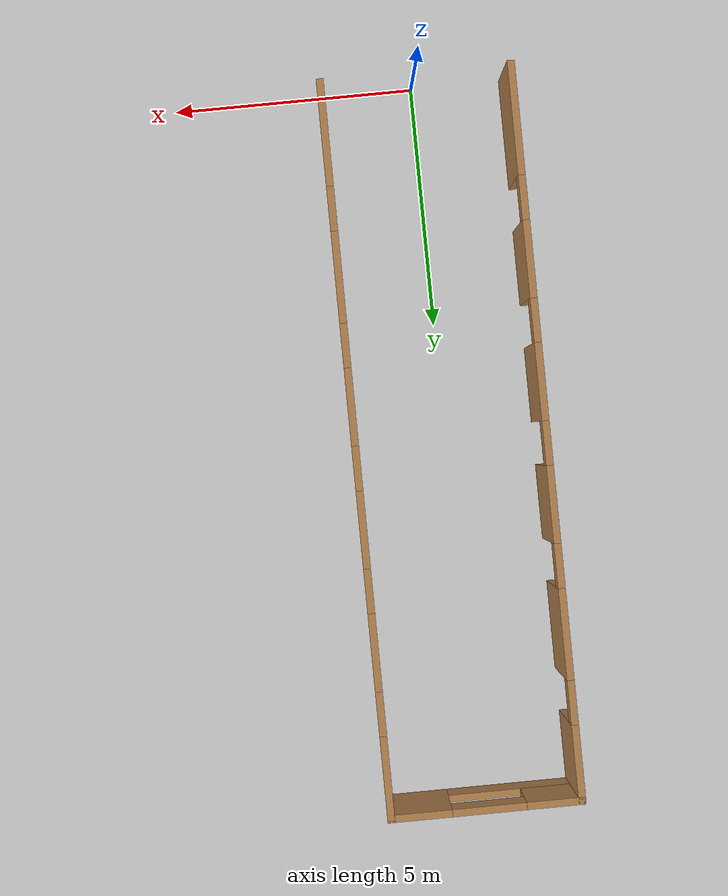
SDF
<sdf version="1.7">
 <world name="default">
  <light name="sun" type="directional">
   <pose>0 0 10 0 -0 0</pose>
   <diffuse>0.8 0.8 0.8 1</diffuse>
   <specular>0.2 0.2 0.2 1</specular>
   <attenuation>
    <range>1000</range>
    <constant>0.9</constant>
    <linear>0.01</linear>
    <quadratic>0.001</quadratic>
   </attenuation>
   <direction>-0.5 0.1 -0.9</direction>
   <spot><inner_angle>0</inner_angle><outer_angle>0</outer_angle><falloff>0</falloff></spot>
  </light>
  <model name="ground_plane">
   <static>1</static>
   <link name="link">
    <collision name="collision">
     <geometry><plane><normal>0 0 1</normal><size>100 100</size></plane></geometry>
     <surface>
      <contact><collide_bitmask>65535</collide_bitmask></contact>
      <friction><ode><mu>100</mu><mu2>50</mu2></ode></friction>
     </surface>
    </collision>
    <visual name="visual">
     <cast_shadows>0</cast_shadows>
     <geometry><plane><normal>0 0 1</normal><size>100 100</size></plane></geometry>
     <material>
      <script><uri>file://media/materials/scripts/gazebo.material</uri><name>Gazebo/Grey</name></script>
     </material>
    </visual>
   </link>
  </model>
  <gravity>0 0 -9.8</gravity>
  <magnetic_field>6e-06 2.3e-05 -4.2e-05</magnetic_field>
  <atmosphere type="adiabatic"/>
  <physics type="ode">
   <max_step_size>0.001</max_step_size>
   <real_time_factor>1</real_time_factor>
   <real_time_update_rate>1000</real_time_update_rate>
  </physics>
  <scene><ambient>0.4 0.4 0.4 1</ambient><background>0.7 0.7 0.7 1</background><shadows>1</shadows></scene>
  <spherical_coordinates>
   <surface_model>EARTH_WGS84</surface_model>
   <latitude_deg>0</latitude_deg>
   <longitude_deg>0</longitude_deg>
   <elevation>0</elevation>
   <heading_deg>0</heading_deg>
  </spherical_coordinates>
  <model name="Untitled">
   <pose>-0.015 7.495 0 0 -0 0</pose>
   <link name="Wall_2">
    <pose>1.925 0 0 0 -0 1.5708</pose>
    <visual name="Wall_2_Visual_0">
     <pose>-6.41515 0 1.25 0 -0 0</pose>
     <geometry><box><size>2.16969 0.15 2.5</size></box></geometry>
     <material>
      <script><uri>file://media/materials/scripts/gazebo.material</uri><name>Gazebo/Wood</name></script>
      <ambient>1 1 1 1</ambient>
     </material>
     <meta><layer>0</layer></meta>
    </visual>
    <collision name="Wall_2_Collision_0">
     <geometry><box><size>2.16969 0.15 2.5</size></box></geometry>
     <pose>-6.41515 0 1.25 0 -0 0</pose>
    </collision>
    <visual name="Wall_2_Visual_1">
     <pose>-3.50054 0 1.25 0 -0 0</pose>
     <geometry><box><size>1.85953 0.15 2.5</size></box></geometry>
     <material>
      <script><uri>file://media/materials/scripts/gazebo.material</uri><name>Gazebo/Wood</name></script>
      <ambient>1 1 1 1</ambient>
     </material>
     <meta><layer>0</layer></meta>
    </visual>
    <collision name="Wall_2_Collision_1">
     <geometry><box><size>1.85953 0.15 2.5</size></box></geometry>
     <pose>-3.50054 0 1.25 0 -0 0</pose>
    </collision>
    <visual name="Wall_2_Visual_2">
     <pose>-0.882532 0 1.25 0 -0 0</pose>
     <geometry><box><size>1.5765 0.15 2.5</size></box></geometry>
     <material>
      <script><uri>file://media/materials/scripts/gazebo.material</uri><name>Gazebo/Wood</name></script>
      <ambient>1 1 1 1</ambient>
     </material>
     <meta><layer>0</layer></meta>
    </visual>
    <collision name="Wall_2_Collision_2">
     <geometry><box><size>1.5765 0.15 2.5</size></box></geometry>
     <pose>-0.882532 0 1.25 0 -0 0</pose>
    </collision>
    <visual name="Wall_2_Visual_3">
     <pose>1.59397 0 1.25 0 -0 0</pose>
     <geometry><box><size>1.5765 0.15 2.5</size></box></geometry>
     <material>
      <script><uri>file://media/materials/scripts/gazebo.material</uri><name>Gazebo/Wood</name></script>
      <ambient>1 1 1 1</ambient>
     </material>
     <meta><layer>0</layer></meta>
    </visual>
    <collision name="Wall_2_Collision_3">
     <geometry><box><size>1.5765 0.15 2.5</size></box></geometry>
     <pose>1.59397 0 1.25 0 -0 0</pose>
    </collision>
    <visual name="Wall_2_Visual_4">
     <pose>4.07046 0 1.25 0 -0 0</pose>
     <geometry><box><size>1.5765 0.15 2.5</size></box></geometry>
     <material>
      <script><uri>file://media/materials/scripts/gazebo.material</uri><name>Gazebo/Wood</name></script>
      <ambient>1 1 1 1</ambient>
     </material>
     <meta><layer>0</layer></meta>
    </visual>
    <collision name="Wall_2_Collision_4">
     <geometry><box><size>1.5765 0.15 2.5</size></box></geometry>
     <pose>4.07046 0 1.25 0 -0 0</pose>
    </collision>
    <visual name="Wall_2_Visual_5">
     <pose>6.62936 0 1.25 0 -0 0</pose>
     <geometry><box><size>1.74129 0.15 2.5</size></box></geometry>
     <material>
      <script><uri>file://media/materials/scripts/gazebo.material</uri><name>Gazebo/Wood</name></script>
      <ambient>1 1 1 1</ambient>
     </material>
     <meta><layer>0</layer></meta>
    </visual>
    <collision name="Wall_2_Collision_5">
     <geometry><box><size>1.74129 0.15 2.5</size></box></geometry>
     <pose>6.62936 0 1.25 0 -0 0</pose>
    </collision>
    <visual name="Wall_2_Visual_6">
     <pose>-4.88031 0 2.25 0 -0 0</pose>
     <geometry><box><size>0.9 0.15 0.5</size></box></geometry>
     <material>
      <script><uri>file://media/materials/scripts/gazebo.material</uri><name>Gazebo/Wood</name></script>
      <ambient>1 1 1 1</ambient>
     </material>
     <meta><layer>0</layer></meta>
    </visual>
    <collision name="Wall_2_Collision_6">
     <geometry><box><size>0.9 0.15 0.5</size></box></geometry>
     <pose>-4.88031 0 2.25 0 -0 0</pose>
    </collision>
    <visual name="Wall_2_Visual_7">
     <pose>-2.12078 0 2.25 0 -0 0</pose>
     <geometry><box><size>0.9 0.15 0.5</size></box></geometry>
     <material>
      <script><uri>file://media/materials/scripts/gazebo.material</uri><name>Gazebo/Wood</name></script>
      <ambient>1 1 1 1</ambient>
     </material>
     <meta><layer>0</layer></meta>
    </visual>
    <collision name="Wall_2_Collision_7">
     <geometry><box><size>0.9 0.15 0.5</size></box></geometry>
     <pose>-2.12078 0 2.25 0 -0 0</pose>
    </collision>
    <visual name="Wall_2_Visual_8">
     <pose>0.355717 0 2.25 0 -0 0</pose>
     <geometry><box><size>0.9 0.15 0.5</size></box></geometry>
     <material>
      <script><uri>file://media/materials/scripts/gazebo.material</uri><name>Gazebo/Wood</name></script>
      <ambient>1 1 1 1</ambient>
     </material>
     <meta><layer>0</layer></meta>
    </visual>
    <collision name="Wall_2_Collision_8">
     <geometry><box><size>0.9 0.15 0.5</size></box></geometry>
     <pose>0.355717 0 2.25 0 -0 0</pose>
    </collision>
    <visual name="Wall_2_Visual_9">
     <pose>2.83221 0 2.25 0 -0 0</pose>
     <geometry><box><size>0.9 0.15 0.5</size></box></geometry>
     <material>
      <script><uri>file://media/materials/scripts/gazebo.material</uri><name>Gazebo/Wood</name></script>
      <ambient>1 1 1 1</ambient>
     </material>
     <meta><layer>0</layer></meta>
    </visual>
    <collision name="Wall_2_Collision_9">
     <geometry><box><size>0.9 0.15 0.5</size></box></geometry>
     <pose>2.83221 0 2.25 0 -0 0</pose>
    </collision>
    <visual name="Wall_2_Visual_10">
     <pose>5.30871 0 2.25 0 -0 0</pose>
     <geometry><box><size>0.9 0.15 0.5</size></box></geometry>
     <material>
      <script><uri>file://media/materials/scripts/gazebo.material</uri><name>Gazebo/Wood</name></script>
      <ambient>1 1 1 1</ambient>
     </material>
     <meta><layer>0</layer></meta>
    </visual>
    <collision name="Wall_2_Collision_10">
     <geometry><box><size>0.9 0.15 0.5</size></box></geometry>
     <pose>5.30871 0 2.25 0 -0 0</pose>
    </collision>
   </link>
   <link name="Wall_4">
    <pose>0 7.425 0 0 -0 3.14159</pose>
    <visual name="Wall_4_Visual_0">
     <pose>-1.34394 0 1.25 0 -0 0</pose>
     <geometry><box><size>1.31213 0.15 2.5</size></box></geometry>
     <material>
      <script><uri>file://media/materials/scripts/gazebo.material</uri><name>Gazebo/Wood</name></script>
      <ambient>1 1 1 1</ambient>
     </material>
     <meta><layer>0</layer></meta>
    </visual>
    <collision name="Wall_4_Collision_0">
     <geometry><box><size>1.31213 0.15 2.5</size></box></geometry>
     <pose>-1.34394 0 1.25 0 -0 0</pose>
    </collision>
    <visual name="Wall_4_Visual_1">
     <pose>0.656065 0 0.4 0 -0 0</pose>
     <geometry><box><size>2.68787 0.15 0.8</size></box></geometry>
     <material>
      <script><uri>file://media/materials/scripts/gazebo.material</uri><name>Gazebo/Wood</name></script>
      <ambient>1 1 1 1</ambient>
     </material>
     <meta><layer>0</layer></meta>
    </visual>
    <collision name="Wall_4_Collision_1">
     <geometry><box><size>2.68787 0.15 0.8</size></box></geometry>
     <pose>0.656065 0 0.4 0 -0 0</pose>
    </collision>
    <visual name="Wall_4_Visual_2">
     <pose>1.40606 0 1.65 0 -0 0</pose>
     <geometry><box><size>1.18787 0.15 1.7</size></box></geometry>
     <material>
      <script><uri>file://media/materials/scripts/gazebo.material</uri><name>Gazebo/Wood</name></script>
      <ambient>1 1 1 1</ambient>
     </material>
     <meta><layer>0</layer></meta>
    </visual>
    <collision name="Wall_4_Collision_2">
     <geometry><box><size>1.18787 0.15 1.7</size></box></geometry>
     <pose>1.40606 0 1.65 0 -0 0</pose>
    </collision>
    <visual name="Wall_4_Visual_3">
     <pose>0.06213 0 2.15 0 -0 0</pose>
     <geometry><box><size>1.5 0.15 0.7</size></box></geometry>
     <material>
      <script><uri>file://media/materials/scripts/gazebo.material</uri><name>Gazebo/Wood</name></script>
      <ambient>1 1 1 1</ambient>
     </material>
     <meta><layer>0</layer></meta>
    </visual>
    <collision name="Wall_4_Collision_3">
     <geometry><box><size>1.5 0.15 0.7</size></box></geometry>
     <pose>0.06213 0 2.15 0 -0 0</pose>
    </collision>
   </link>
   <link name="Wall_5">
    <pose>-1.925 0 0 0 -0 -1.5708</pose>
    <visual name="Wall_5_Visual_0">
     <pose>-6.70011 0 1.25 0 -0 0</pose>
     <geometry><box><size>1.59977 0.15 2.5</size></box></geometry>
     <material>
      <script><uri>file://media/materials/scripts/gazebo.material</uri><name>Gazebo/Wood</name></script>
      <ambient>1 1 1 1</ambient>
     </material>
     <meta><layer>0</layer></meta>
    </visual>
    <collision name="Wall_5_Collision_0">
     <geometry><box><size>1.59977 0.15 2.5</size></box></geometry>
     <pose>-6.70011 0 1.25 0 -0 0</pose>
    </collision>
    <visual name="Wall_5_Visual_1">
     <pose>-4.07046 0 1.25 0 -0 0</pose>
     <geometry><box><size>1.85953 0.15 2.5</size></box></geometry>
     <material>
      <script><uri>file://media/materials/scripts/gazebo.material</uri><name>Gazebo/Wood</name></script>
      <ambient>1 1 1 1</ambient>
     </material>
     <meta><layer>0</layer></meta>
    </visual>
    <collision name="Wall_5_Collision_1">
     <geometry><box><size>1.85953 0.15 2.5</size></box></geometry>
     <pose>-4.07046 0 1.25 0 -0 0</pose>
    </collision>
    <visual name="Wall_5_Visual_2">
     <pose>-1.45245 0 1.25 0 -0 0</pose>
     <geometry><box><size>1.5765 0.15 2.5</size></box></geometry>
     <material>
      <script><uri>file://media/materials/scripts/gazebo.material</uri><name>Gazebo/Wood</name></script>
      <ambient>1 1 1 1</ambient>
     </material>
     <meta><layer>0</layer></meta>
    </visual>
    <collision name="Wall_5_Collision_2">
     <geometry><box><size>1.5765 0.15 2.5</size></box></geometry>
     <pose>-1.45245 0 1.25 0 -0 0</pose>
    </collision>
    <visual name="Wall_5_Visual_3">
     <pose>1.02405 0 1.25 0 -0 0</pose>
     <geometry><box><size>1.5765 0.15 2.5</size></box></geometry>
     <material>
      <script><uri>file://media/materials/scripts/gazebo.material</uri><name>Gazebo/Wood</name></script>
      <ambient>1 1 1 1</ambient>
     </material>
     <meta><layer>0</layer></meta>
    </visual>
    <collision name="Wall_5_Collision_3">
     <geometry><box><size>1.5765 0.15 2.5</size></box></geometry>
     <pose>1.02405 0 1.25 0 -0 0</pose>
    </collision>
    <visual name="Wall_5_Visual_4">
     <pose>3.50054 0 1.25 0 -0 0</pose>
     <geometry><box><size>1.5765 0.15 2.5</size></box></geometry>
     <material>
      <script><uri>file://media/materials/scripts/gazebo.material</uri><name>Gazebo/Wood</name></script>
      <ambient>1 1 1 1</ambient>
     </material>
     <meta><layer>0</layer></meta>
    </visual>
    <collision name="Wall_5_Collision_4">
     <geometry><box><size>1.5765 0.15 2.5</size></box></geometry>
     <pose>3.50054 0 1.25 0 -0 0</pose>
    </collision>
    <visual name="Wall_5_Visual_5">
     <pose>6.3444 0 1.25 0 -0 0</pose>
     <geometry><box><size>2.31121 0.15 2.5</size></box></geometry>
     <material>
      <script><uri>file://media/materials/scripts/gazebo.material</uri><name>Gazebo/Wood</name></script>
      <ambient>1 1 1 1</ambient>
     </material>
     <meta><layer>0</layer></meta>
    </visual>
    <collision name="Wall_5_Collision_5">
     <geometry><box><size>2.31121 0.15 2.5</size></box></geometry>
     <pose>6.3444 0 1.25 0 -0 0</pose>
    </collision>
    <visual name="Wall_5_Visual_6">
     <pose>-5.45022 0 2.25 0 -0 0</pose>
     <geometry><box><size>0.9 0.15 0.5</size></box></geometry>
     <material>
      <script><uri>file://media/materials/scripts/gazebo.material</uri><name>Gazebo/Wood</name></script>
      <ambient>1 1 1 1</ambient>
     </material>
     <meta><layer>0</layer></meta>
    </visual>
    <collision name="Wall_5_Collision_6">
     <geometry><box><size>0.9 0.15 0.5</size></box></geometry>
     <pose>-5.45022 0 2.25 0 -0 0</pose>
    </collision>
    <visual name="Wall_5_Visual_7">
     <pose>-2.6907 0 2.25 0 -0 0</pose>
     <geometry><box><size>0.9 0.15 0.5</size></box></geometry>
     <material>
      <script><uri>file://media/materials/scripts/gazebo.material</uri><name>Gazebo/Wood</name></script>
      <ambient>1 1 1 1</ambient>
     </material>
     <meta><layer>0</layer></meta>
    </visual>
    <collision name="Wall_5_Collision_7">
     <geometry><box><size>0.9 0.15 0.5</size></box></geometry>
     <pose>-2.6907 0 2.25 0 -0 0</pose>
    </collision>
    <visual name="Wall_5_Visual_8">
     <pose>-0.214202 0 2.25 0 -0 0</pose>
     <geometry><box><size>0.9 0.15 0.5</size></box></geometry>
     <material>
      <script><uri>file://media/materials/scripts/gazebo.material</uri><name>Gazebo/Wood</name></script>
      <ambient>1 1 1 1</ambient>
     </material>
     <meta><layer>0</layer></meta>
    </visual>
    <collision name="Wall_5_Collision_8">
     <geometry><box><size>0.9 0.15 0.5</size></box></geometry>
     <pose>-0.214202 0 2.25 0 -0 0</pose>
    </collision>
    <visual name="Wall_5_Visual_9">
     <pose>2.26229 0 2.25 0 -0 0</pose>
     <geometry><box><size>0.9 0.15 0.5</size></box></geometry>
     <material>
      <script><uri>file://media/materials/scripts/gazebo.material</uri><name>Gazebo/Wood</name></script>
      <ambient>1 1 1 1</ambient>
     </material>
     <meta><layer>0</layer></meta>
    </visual>
    <collision name="Wall_5_Collision_9">
     <geometry><box><size>0.9 0.15 0.5</size></box></geometry>
     <pose>2.26229 0 2.25 0 -0 0</pose>
    </collision>
    <visual name="Wall_5_Visual_10">
     <pose>4.73879 0 2.25 0 -0 0</pose>
     <geometry><box><size>0.9 0.15 0.5</size></box></geometry>
     <material>
      <script><uri>file://media/materials/scripts/gazebo.material</uri><name>Gazebo/Wood</name></script>
      <ambient>1 1 1 1</ambient>
     </material>
     <meta><layer>0</layer></meta>
    </visual>
    <collision name="Wall_5_Collision_10">
     <geometry><box><size>0.9 0.15 0.5</size></box></geometry>
     <pose>4.73879 0 2.25 0 -0 0</pose>
    </collision>
   </link>
   <static>1</static>
  </model>
 </world>
</sdf>
